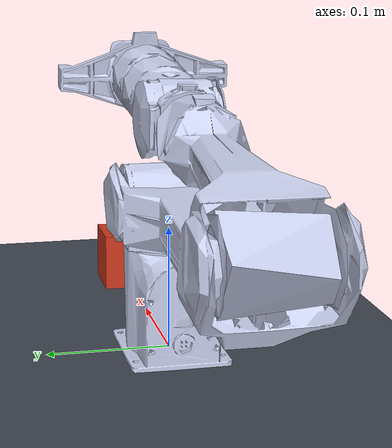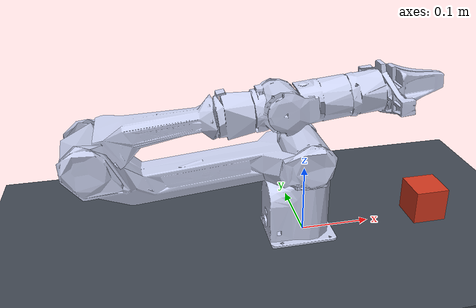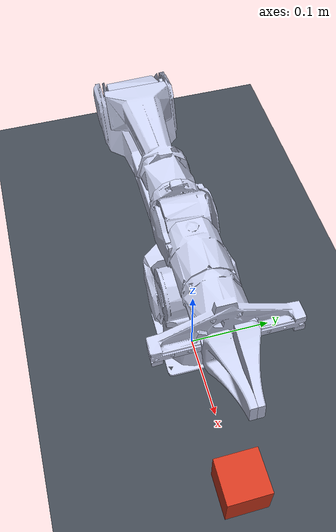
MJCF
<?xml version='1.0' encoding='utf-8'?>
<mujoco model="piper_description">
    <compiler angle="radian" />
    <size njmax="500" nconmax="100" />
    <asset>
        <mesh name="base_link" file="../../../piper_ros/src/piper_description/meshes/base_link.STL" />
        <mesh name="link1" file="../../../piper_ros/src/piper_description/meshes/link1.STL" />
        <mesh name="link2" file="../../../piper_ros/src/piper_description/meshes/link2.STL" />
        <mesh name="link3" file="../../../piper_ros/src/piper_description/meshes/link3.STL" />
        <mesh name="link4" file="../../../piper_ros/src/piper_description/meshes/link4.STL" />
        <mesh name="link5" file="../../../piper_ros/src/piper_description/meshes/link5.STL" />
        <mesh name="link6" file="../../../piper_ros/src/piper_description/meshes/link6.STL" />
        <mesh name="gripper_base" file="../../../piper_ros/src/piper_description/meshes/gripper_base.STL" />
        <mesh name="link7" file="../../../piper_ros/src/piper_description/meshes/link7.STL" />
        <mesh name="link8" file="../../../piper_ros/src/piper_description/meshes/link8.STL" />
        <material name="box_01_material" rgba="0.820000 0.220000 0.120000 1.000000" />
    </asset>
    <worldbody>
        <geom type="mesh" rgba="0.792157 0.819608 0.933333 1" mesh="base_link" />
        <body name="link1" pos="0 0 0.123">
            <inertial pos="0.000121505 0.000104632 -0.00438597" quat="0.486797 0.49897 -0.50059 0.513292" mass="0.215052" diaginertia="0.000116369 0.00010964 9.9555e-05" />
            <joint name="joint1" pos="0 0 0" axis="0 0 1" limited="true" range="-2.618 2.168" damping="300" />
            <geom type="mesh" rgba="0.792157 0.819608 0.933333 1" mesh="link1" />
            <body name="link2" pos="0 0 0" quat="0.0356735 -0.0356786 -0.706207 -0.706205">
                <inertial pos="0.198666 -0.0109269 0.00142122" quat="0.0189031 0.705267 -0.0456298 0.707219" mass="0.463914" diaginertia="0.00104423 0.0010069 0.000207486" />
                <joint name="joint2" pos="0 0 0" axis="0 0 1" limited="true" range="0 3.14" damping="100" />
                <geom type="mesh" rgba="0.792157 0.819608 0.933333 1" mesh="link2" />
                <body name="link3" pos="0.28503 0 0" quat="0.637536 0 0 -0.77042">
                    <inertial pos="-0.0202738 -0.133915 -0.000458683" quat="0.528127 0.491307 -0.505056 0.473938" mass="0.219942" diaginertia="0.000201238 0.000190068 7.08709e-05" />
                    <joint name="joint3" pos="0 0 0" axis="0 0 1" limited="true" range="-2.967 0" damping="20" />
                    <geom type="mesh" rgba="0.792157 0.819608 0.933333 1" mesh="link3" />
                    <body name="link4" pos="-0.021984 -0.25075 0" quat="0.707105 0.707108 0 0">
                        <inertial pos="-9.66636e-05 0.000876064 -0.00496881" quat="0.512749 0.48584 0.481646 0.518714" mass="0.131814" diaginertia="5.1333e-05 4.14831e-05 3.96892e-05" />
                        <joint name="joint4" pos="0 0 0" axis="0 0 1" limited="true" range="-1.745 1.745" damping="5" />
                        <geom type="mesh" rgba="0.792157 0.819608 0.933333 1" mesh="link4" />
                        <body name="link5" pos="0 0 0" quat="0.707105 -0.707108 0 0">
                            <inertial pos="-4.10554e-05 -0.0566487 -0.00372058" quat="0.492375 0.506639 0.49332 0.507463" mass="0.134101" diaginertia="5.27778e-05 4.60364e-05 4.10994e-05" />
                            <joint name="joint5" pos="0 0 0" axis="0 0 1" limited="true" range="-1.22 1.22" damping="2" />
                            <geom type="mesh" rgba="0.792157 0.819608 0.933333 1" mesh="link5" />
                            <body name="link6" pos="8.8259e-05 -0.091 0" quat="0.707105 0.707108 0 0">
                                <inertial pos="-0.000179422 7.72241e-05 0.0305765" quat="0.498967 0.497649 -0.502223 0.501147" mass="0.152309" diaginertia="0.000119759 0.000110059 4.99704e-05" />
                                <joint name="joint6" pos="0 0 0" axis="0 0 1" limited="true" range="-2.0944 2.0944" damping="0.1" />
                                <geom type="mesh" rgba="0.898039 0.917647 0.929412 1" mesh="link6" />
                                <geom type="mesh" rgba="0.792157 0.819608 0.933333 1" mesh="gripper_base" />
                                <body name="link7" pos="0 0 0.1358" quat="0.707105 0.707108 0 0">
                                    <inertial pos="0.000651232 -0.049193 0.00972259" quat="0.519774 0.479905 -0.436488 0.555881" mass="0.0303535" diaginertia="1.60353e-05 1.14217e-05 5.97329e-06" />
                                    <joint name="joint7" pos="0 0 0" axis="0 0 1" type="slide" limited="true" range="0 0.035" damping="100" />
                                    <geom type="mesh" rgba="0.792157 0.819608 0.933333 1" mesh="link7" name="piper_left_finger" friction="2.0 0.05 0.001" />
                                </body>
                                <body name="link8" pos="0 0 0.1358" quat="-2.59734e-06 -2.59735e-06 -0.707108 -0.707105">
                                    <inertial pos="0.000651232 -0.049193 0.00972259" quat="0.519774 0.479905 -0.436488 0.555881" mass="0.0303535" diaginertia="1.60353e-05 1.14217e-05 5.97329e-06" />
                                    <joint name="joint8" pos="0 0 0" axis="0 0 -1" type="slide" limited="true" range="-0.035 0" damping="100" />
                                    <geom type="mesh" rgba="0.792157 0.819608 0.933333 1" mesh="link8" name="piper_right_finger" friction="2.0 0.05 0.001" />
                                </body>
                            </body>
                        </body>
                    </body>
                </body>
            </body>
        </body>
        <light name="key" dir="-0.160000 0.160000 -1.000000" diffuse="0.8500 0.8400 0.8200" specular="0.2500 0.2500 0.2500" directional="true" />
        <light name="fill" dir="0.600000 -0.250000 -0.550000" diffuse="0.3000 0.3000 0.3000" specular="0.0500 0.0500 0.0500" directional="true" />
        <light name="rim" dir="0.250000 0.700000 -0.400000" diffuse="0.2200 0.2200 0.2400" specular="0.0000 0.0000 0.0000" directional="true" />
        <geom name="workbench" type="box" pos="0 0 -0.025000000" size="0.8 0.8 0.025" rgba="0.25 0.28 0.32 1" friction="1.0 0.02 0.001" />
        <body name="box_01" pos="0.189999426 -0.000000000 0.025000000" quat="1.000000000 0.000000000 0.000000000 0.000000000" gravcomp="1">
            <freejoint name="box_01_free" />
            <geom name="box_01_geom" type="box" size="0.025 0.025 0.025" mass="0.04" material="box_01_material" rgba="0.820000 0.220000 0.120000 1.000000" friction="2.0 0.05 0.001" />
        </body>
        <camera name="overhead_camera" mode="fixed" pos="0.280000000 -0.720000000 0.720000000" quat="0.917927478 0.391852118 0.024395831 0.057148098" fovy="78" />
        <body name="grasp_anchor" pos="0.189999426 -0.000000000 0.025000000" mocap="true" />
    </worldbody>
    <actuator>
        <position name="joint1" ctrllimited="true" ctrlrange="-2.618 2.618" joint="joint1" kp="450.000000" user="1" forcelimited="true" forcerange="-20000 20000" />
        <position name="joint2" ctrllimited="true" ctrlrange="0 3.14158" joint="joint2" kp="200.000000" user="1" forcelimited="true" forcerange="-20000 20000" />
        <position name="joint3" ctrllimited="true" ctrlrange="-2.697 0" joint="joint3" kp="200.000000" user="1" forcelimited="true" forcerange="-1000 1000" />
        <position name="joint4" ctrllimited="true" ctrlrange="-1.832 1.832" joint="joint4" kp="200.000000" user="1" forcelimited="true" forcerange="-70 70" />
        <position name="joint5" ctrllimited="true" ctrlrange="-1.22 1.22" joint="joint5" kp="200.000000" user="1" forcelimited="true" forcerange="-50 50" />
        <position name="joint6" ctrllimited="true" ctrlrange="-3.14158 3.14158" joint="joint6" kp="200.000000" user="1" forcelimited="true" forcerange="-6 6" />
        <position name="joint7" ctrllimited="true" ctrlrange="0 0.0475" joint="joint7" kp="10000" user="1" forcelimited="true" forcerange="-100 100" />
        <position name="joint8" ctrllimited="true" ctrlrange="-0.0475 0" joint="joint8" kp="10000" user="1" forcelimited="true" forcerange="-100 100" />
    </actuator>
    <option timestep="0.002" gravity="0 0 -9.81" />
    <equality>
        <connect name="box_01_lift_constraint" body1="grasp_anchor" body2="box_01" anchor="0.189999426 -0.000000000 0.025000000" active="false" solref="0.01 1" solimp="0.9 0.95 0.01" />
    </equality>
</mujoco>
